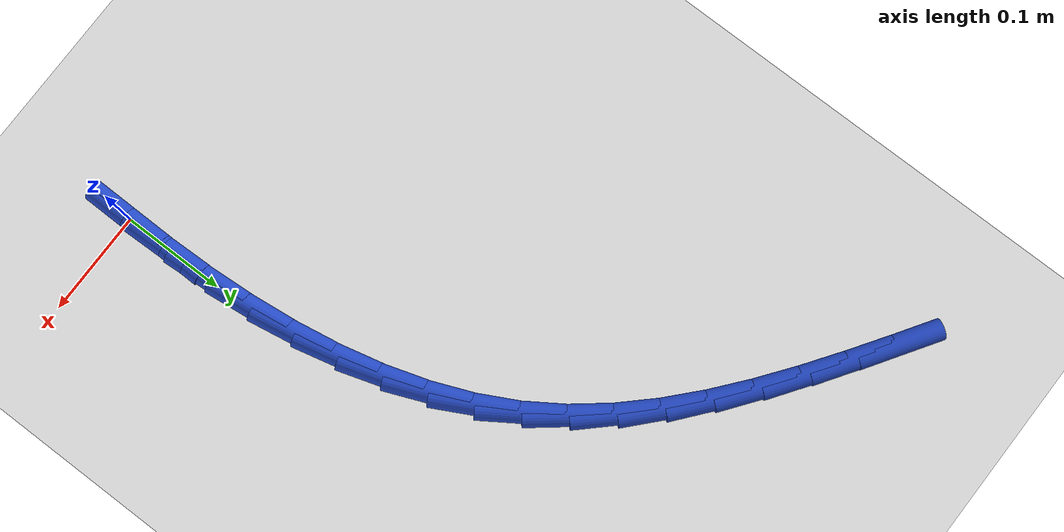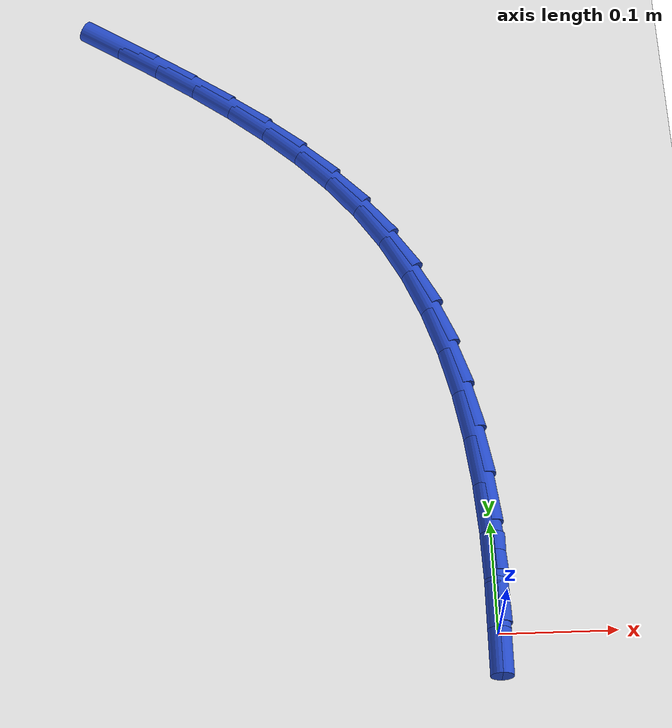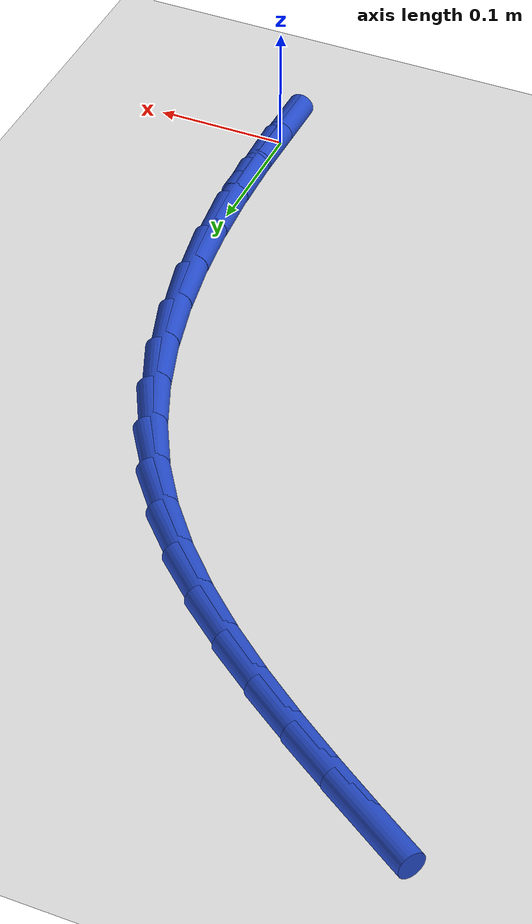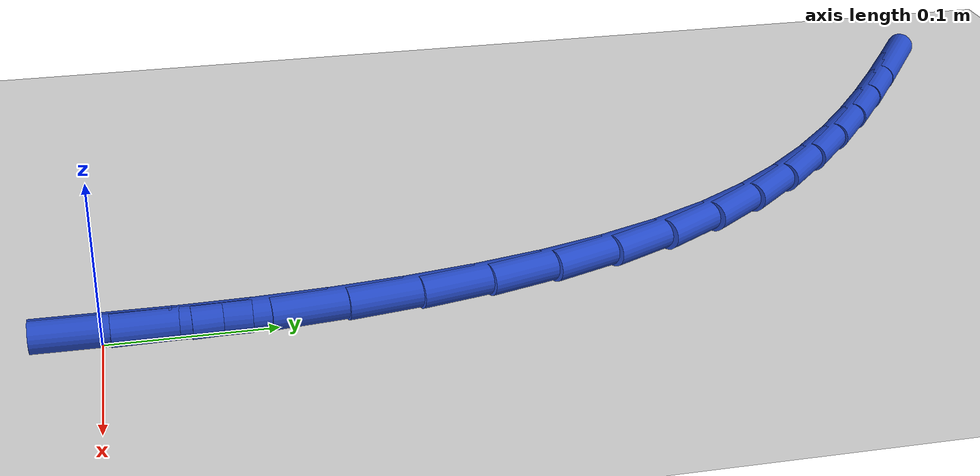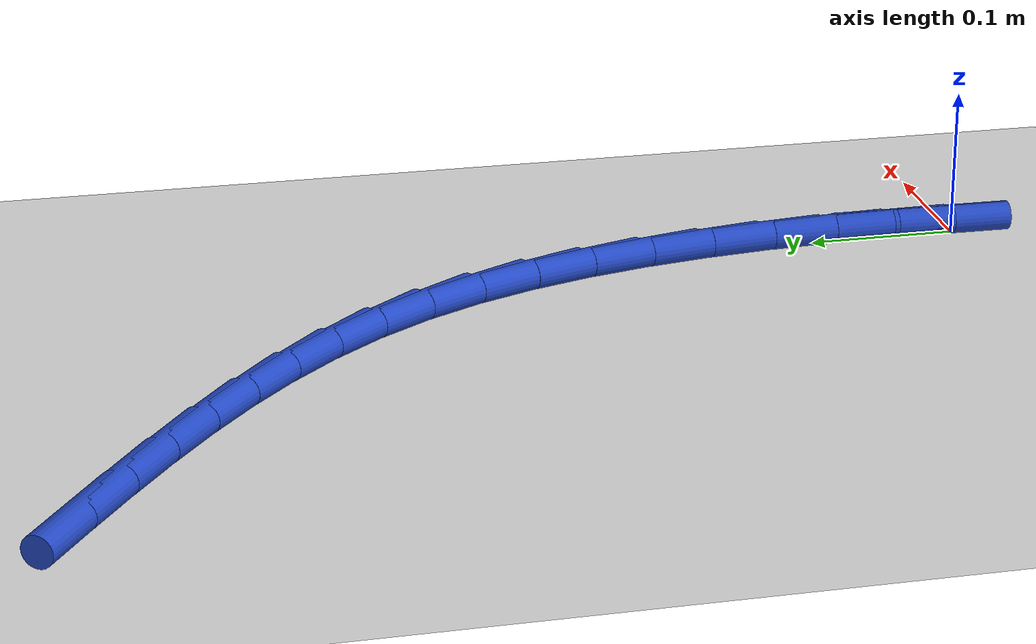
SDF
<sdf version="1.6">
 <world name="default">
  <model name="ground_plane">
   <static>1</static>
   <link name="link">
    <collision name="collision">
     <geometry><plane><normal>0 0 1</normal><size>100 100</size></plane></geometry>
     <surface><friction><ode><mu>100</mu><mu2>50</mu2></ode></friction></surface>
    </collision>
    <visual name="visual">
     <cast_shadows>0</cast_shadows>
     <geometry><plane><normal>0 0 1</normal><size>100 100</size></plane></geometry>
     <material>
      <script><uri>file://media/materials/scripts/gazebo.material</uri><name>Gazebo/WhiteGlow</name></script>
     </material>
    </visual>
   </link>
  </model>
  <model name="line">
   <link name="link_0">
    <pose>5.898059818321144e-17 -1.1102230246251565e-16 0.01 0 1.57 1.56180621428713</pose>
    <collision name="collision">
     <geometry><cylinder><radius>0.01</radius><length>0.08</length></cylinder></geometry>
    </collision>
    <visual name="visual">
     <material>
      <script><name>Gazebo/Blue</name><uri>file://media/materials/scripts/gazebo.material</uri></script>
     </material>
     <geometry><cylinder><radius>0.01</radius><length>0.08</length></cylinder></geometry>
    </visual>
   </link>
   <link name="link_1">
    <pose>0.00040379242468226585 0.04491395917694073 0.01 0 1.57 -1.5439375213575095</pose>
    <collision name="collision">
     <geometry><cylinder><radius>0.01</radius><length>0.08</length></cylinder></geometry>
    </collision>
    <visual name="visual">
     <material>
      <script><name>Gazebo/Blue</name><uri>file://media/materials/scripts/gazebo.material</uri></script>
     </material>
     <geometry><cylinder><radius>0.01</radius><length>0.08</length></cylinder></geometry>
    </visual>
   </link>
   <link name="link_2">
    <pose>-0.0008047868837613741 0.08990064617186799 0.01 0 1.57 -1.5024942950736468</pose>
    <collision name="collision">
     <geometry><cylinder><radius>0.01</radius><length>0.08</length></cylinder></geometry>
    </collision>
    <visual name="visual">
     <material>
      <script><name>Gazebo/Blue</name><uri>file://media/materials/scripts/gazebo.material</uri></script>
     </material>
     <geometry><cylinder><radius>0.01</radius><length>0.08</length></cylinder></geometry>
    </visual>
   </link>
   <link name="link_3">
    <pose>-0.003865403800621507 0.13464098447116502 0.01 0 1.57 -1.4546864012592606</pose>
    <collision name="collision">
     <geometry><cylinder><radius>0.01</radius><length>0.08</length></cylinder></geometry>
    </collision>
    <visual name="visual">
     <material>
      <script><name>Gazebo/Blue</name><uri>file://media/materials/scripts/gazebo.material</uri></script>
     </material>
     <geometry><cylinder><radius>0.01</radius><length>0.08</length></cylinder></geometry>
    </visual>
   </link>
   <link name="link_4">
    <pose>-0.009017724201188775 0.17881589756121483 0.01 0 1.57 -1.3996163998209812</pose>
    <collision name="collision">
     <geometry><cylinder><radius>0.01</radius><length>0.08</length></cylinder></geometry>
    </collision>
    <visual name="visual">
     <material>
      <script><name>Gazebo/Blue</name><uri>file://media/materials/scripts/gazebo.material</uri></script>
     </material>
     <geometry><cylinder><radius>0.01</radius><length>0.08</length></cylinder></geometry>
    </visual>
   </link>
   <link name="link_5">
    <pose>-0.01650141396075381 0.22210630892840083 0.01 0 1.57 -1.336287637648683</pose>
    <collision name="collision">
     <geometry><cylinder><radius>0.01</radius><length>0.08</length></cylinder></geometry>
    </collision>
    <visual name="visual">
     <material>
      <script><name>Gazebo/Blue</name><uri>file://media/materials/scripts/gazebo.material</uri></script>
     </material>
     <geometry><cylinder><radius>0.01</radius><length>0.08</length></cylinder></geometry>
    </visual>
   </link>
   <link name="link_6">
    <pose>-0.02655613895460727 0.2641931420591062 0.01 0 1.57 -1.2636696546748554</pose>
    <collision name="collision">
     <geometry><cylinder><radius>0.01</radius><length>0.08</length></cylinder></geometry>
    </collision>
    <visual name="visual">
     <material>
      <script><name>Gazebo/Blue</name><uri>file://media/materials/scripts/gazebo.material</uri></script>
     </material>
     <geometry><cylinder><radius>0.01</radius><length>0.08</length></cylinder></geometry>
    </visual>
   </link>
   <link name="link_7">
    <pose>-0.03942156505803979 0.30475732043971426 0.01 0 1.57 -1.180824143735732</pose>
    <collision name="collision">
     <geometry><cylinder><radius>0.01</radius><length>0.08</length></cylinder></geometry>
    </collision>
    <visual name="visual">
     <material>
      <script><name>Gazebo/Blue</name><uri>file://media/materials/scripts/gazebo.material</uri></script>
     </material>
     <geometry><cylinder><radius>0.01</radius><length>0.08</length></cylinder></geometry>
    </visual>
   </link>
   <link name="link_8">
    <pose>-0.05533735814634197 0.34347976755660786 0.01 0 1.57 -1.0871142439543904</pose>
    <collision name="collision">
     <geometry><cylinder><radius>0.01</radius><length>0.08</length></cylinder></geometry>
    </collision>
    <visual name="visual">
     <material>
      <script><name>Gazebo/Blue</name><uri>file://media/materials/scripts/gazebo.material</uri></script>
     </material>
     <geometry><cylinder><radius>0.01</radius><length>0.08</length></cylinder></geometry>
    </visual>
   </link>
   <link name="link_9">
    <pose>-0.0745431840948045 0.38004140689617066 0.01 0 1.57 -0.9852484915830972</pose>
    <collision name="collision">
     <geometry><cylinder><radius>0.01</radius><length>0.08</length></cylinder></geometry>
    </collision>
    <visual name="visual">
     <material>
      <script><name>Gazebo/Blue</name><uri>file://media/materials/scripts/gazebo.material</uri></script>
     </material>
     <geometry><cylinder><radius>0.01</radius><length>0.08</length></cylinder></geometry>
    </visual>
   </link>
   <link name="link_10">
    <pose>-0.097196464191529 0.41420272313641987 0.01 0 1.57 -0.8901639784117636</pose>
    <collision name="collision">
     <geometry><cylinder><radius>0.01</radius><length>0.08</length></cylinder></geometry>
    </collision>
    <visual name="visual">
     <material>
      <script><name>Gazebo/Blue</name><uri>file://media/materials/scripts/gazebo.material</uri></script>
     </material>
     <geometry><cylinder><radius>0.01</radius><length>0.08</length></cylinder></geometry>
    </visual>
   </link>
   <link name="link_11">
    <pose>-0.12304247689613815 0.446122896792728 0.01 0 1.57 -0.8077023309881043</pose>
    <collision name="collision">
     <geometry><cylinder><radius>0.01</radius><length>0.08</length></cylinder></geometry>
    </collision>
    <visual name="visual">
     <material>
      <script><name>Gazebo/Blue</name><uri>file://media/materials/scripts/gazebo.material</uri></script>
     </material>
     <geometry><cylinder><radius>0.01</radius><length>0.08</length></cylinder></geometry>
    </visual>
   </link>
   <link name="link_12">
    <pose>-0.15169767128786021 0.476085734442461 0.01 0 1.57 -0.738415332042732</pose>
    <collision name="collision">
     <geometry><cylinder><radius>0.01</radius><length>0.08</length></cylinder></geometry>
    </collision>
    <visual name="visual">
     <material>
      <script><name>Gazebo/Blue</name><uri>file://media/materials/scripts/gazebo.material</uri></script>
     </material>
     <geometry><cylinder><radius>0.01</radius><length>0.08</length></cylinder></geometry>
    </visual>
   </link>
   <link name="link_13">
    <pose>-0.18277845282651323 0.5043750848592243 0.01 0 1.57 -0.6820884298924055</pose>
    <collision name="collision">
     <geometry><cylinder><radius>0.01</radius><length>0.08</length></cylinder></geometry>
    </collision>
    <visual name="visual">
     <material>
      <script><name>Gazebo/Blue</name><uri>file://media/materials/scripts/gazebo.material</uri></script>
     </material>
     <geometry><cylinder><radius>0.01</radius><length>0.08</length></cylinder></geometry>
    </visual>
   </link>
   <link name="link_14">
    <pose>-0.2159012269719153 0.5312747968166227 0.01 0 1.57 -0.6381071993134898</pose>
    <collision name="collision">
     <geometry><cylinder><radius>0.01</radius><length>0.08</length></cylinder></geometry>
    </collision>
    <visual name="visual">
     <material>
      <script><name>Gazebo/Blue</name><uri>file://media/materials/scripts/gazebo.material</uri></script>
     </material>
     <geometry><cylinder><radius>0.01</radius><length>0.08</length></cylinder></geometry>
    </visual>
   </link>
   <link name="link_15">
    <pose>-0.2506823991838844 0.5570687190882618 0.01 0 1.57 -0.6057349746156875</pose>
    <collision name="collision">
     <geometry><cylinder><radius>0.01</radius><length>0.08</length></cylinder></geometry>
    </collision>
    <visual name="visual">
     <material>
      <script><name>Gazebo/Blue</name><uri>file://media/materials/scripts/gazebo.material</uri></script>
     </material>
     <geometry><cylinder><radius>0.01</radius><length>0.08</length></cylinder></geometry>
    </visual>
   </link>
   <link name="link_16">
    <pose>-0.28673837492223875 0.5820407004477464 0.01 0 1.57 -0.5842914925208349</pose>
    <collision name="collision">
     <geometry><cylinder><radius>0.01</radius><length>0.08</length></cylinder></geometry>
    </collision>
    <visual name="visual">
     <material>
      <script><name>Gazebo/Blue</name><uri>file://media/materials/scripts/gazebo.material</uri></script>
     </material>
     <geometry><cylinder><radius>0.01</radius><length>0.08</length></cylinder></geometry>
    </visual>
   </link>
   <link name="link_17">
    <pose>-0.3236855596467963 0.6064745896686818 0.01 0 1.57 -0.5732537579557585</pose>
    <collision name="collision">
     <geometry><cylinder><radius>0.01</radius><length>0.08</length></cylinder></geometry>
    </collision>
    <visual name="visual">
     <material>
      <script><name>Gazebo/Blue</name><uri>file://media/materials/scripts/gazebo.material</uri></script>
     </material>
     <geometry><cylinder><radius>0.01</radius><length>0.08</length></cylinder></geometry>
    </visual>
   </link>
   <link name="link_160">
    <pose>5.377642775528102e-17 -1.5265566588595902e-16 0.01 0 1.57 1.5606484257496307</pose>
    <collision name="collision">
     <geometry><cylinder><radius>0.01</radius><length>0.08</length></cylinder></geometry>
    </collision>
    <visual name="visual">
     <material>
      <script><name>Gazebo/Blue</name><uri>file://media/materials/scripts/gazebo.material</uri></script>
     </material>
     <geometry><cylinder><radius>0.01</radius><length>0.08</length></cylinder></geometry>
    </visual>
   </link>
   <link name="link_161">
    <pose>0.00045623620584912036 0.044957133761379185 0.01 0 1.57 1.5606484257496307</pose>
    <collision name="collision">
     <geometry><cylinder><radius>0.01</radius><length>0.08</length></cylinder></geometry>
    </collision>
    <visual name="visual">
     <material>
      <script><name>Gazebo/Blue</name><uri>file://media/materials/scripts/gazebo.material</uri></script>
     </material>
     <geometry><cylinder><radius>0.01</radius><length>0.08</length></cylinder></geometry>
    </visual>
   </link>
  </model>
 </world>
</sdf>
